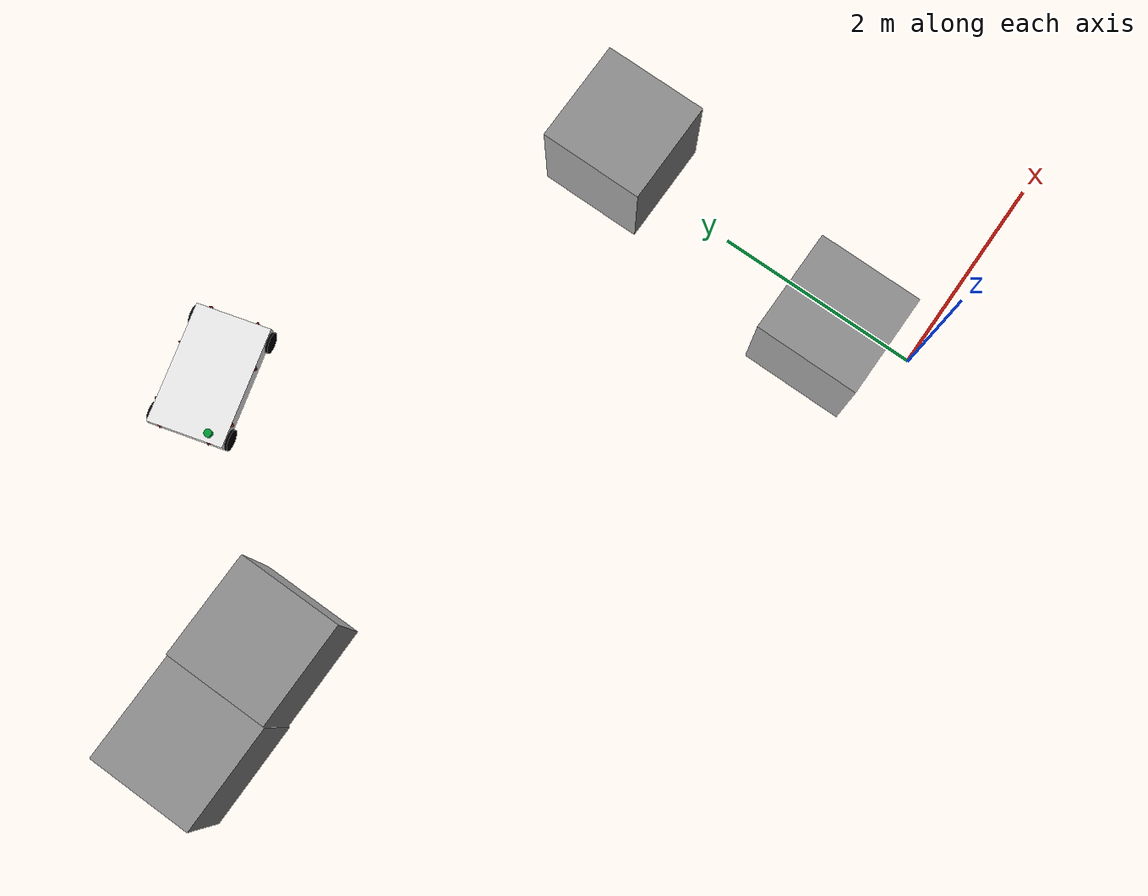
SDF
<sdf version="1.7">
 <world name="default">
  <gravity>0 0 -9.8</gravity>
  <magnetic_field>6e-06 2.3e-05 -4.2e-05</magnetic_field>
  <atmosphere type="adiabatic"/>
  <physics name="default_physics" default="0" type="ode">
   <max_step_size>0.001</max_step_size>
   <real_time_factor>1</real_time_factor>
   <real_time_update_rate>1000</real_time_update_rate>
  </physics>
  <scene>
   <ambient>0.4 0.4 0.4 1</ambient>
   <background>0.7 0.7 0.7 1</background>
   <shadows>1</shadows>
   <grid>0</grid>
   <origin_visual>0</origin_visual>
  </scene>
  <spherical_coordinates>
   <surface_model>EARTH_WGS84</surface_model>
   <latitude_deg>0</latitude_deg>
   <longitude_deg>0</longitude_deg>
   <elevation>0</elevation>
   <heading_deg>0</heading_deg>
  </spherical_coordinates>
  <light name="RetailShop_CeilingLight_001" type="point">
   <pose>2.77442 -3.62815 3.17847 0 -0 0</pose>
   <diffuse>0.5 0.5 0.5 1</diffuse>
   <specular>0.1 0.1 0.1 1</specular>
   <attenuation>
    <range>20</range>
    <constant>0.32</constant>
    <linear>0.01</linear>
    <quadratic>0.03</quadratic>
   </attenuation>
   <cast_shadows>0</cast_shadows>
   <direction>0 0 -1</direction>
   <spot><inner_angle>0</inner_angle><outer_angle>0</outer_angle><falloff>0</falloff></spot>
  </light>
  <light name="RetailShop_CeilingLight_002" type="point">
   <pose>5.38399 -5.38371 3.17847 0 -0 0</pose>
   <diffuse>0.5 0.5 0.5 1</diffuse>
   <specular>0.1 0.1 0.1 1</specular>
   <attenuation>
    <range>20</range>
    <constant>0.32</constant>
    <linear>0.01</linear>
    <quadratic>0.03</quadratic>
   </attenuation>
   <cast_shadows>0</cast_shadows>
   <direction>0 0 -1</direction>
   <spot><inner_angle>0</inner_angle><outer_angle>0</outer_angle><falloff>0</falloff></spot>
  </light>
  <light name="RetailShop_CeilingLight_003" type="point">
   <pose>5.38399 0.04192 3.17847 0 -0 0</pose>
   <diffuse>0.5 0.5 0.5 1</diffuse>
   <specular>0.1 0.1 0.1 1</specular>
   <attenuation>
    <range>20</range>
    <constant>0.32</constant>
    <linear>0.01</linear>
    <quadratic>0.03</quadratic>
   </attenuation>
   <cast_shadows>0</cast_shadows>
   <direction>0 0 -1</direction>
   <spot><inner_angle>0</inner_angle><outer_angle>0</outer_angle><falloff>0</falloff></spot>
  </light>
  <light name="RetailShop_CeilingLight_004" type="point">
   <pose>-3.21067 -5.38371 3.17847 0 -0 0</pose>
   <diffuse>0.5 0.5 0.5 1</diffuse>
   <specular>0.1 0.1 0.1 1</specular>
   <attenuation>
    <range>20</range>
    <constant>0.32</constant>
    <linear>0.01</linear>
    <quadratic>0.03</quadratic>
   </attenuation>
   <cast_shadows>0</cast_shadows>
   <direction>0 0 -1</direction>
   <spot><inner_angle>0</inner_angle><outer_angle>0</outer_angle><falloff>0</falloff></spot>
  </light>
  <light name="RetailShop_CeilingLight_005" type="point">
   <pose>-3.271 2.68593 3.17847 0 -0 0</pose>
   <diffuse>0.5 0.5 0.5 1</diffuse>
   <specular>0.1 0.1 0.1 1</specular>
   <attenuation>
    <range>20</range>
    <constant>0.32</constant>
    <linear>0.01</linear>
    <quadratic>0.03</quadratic>
   </attenuation>
   <cast_shadows>0</cast_shadows>
   <direction>0 0 -1</direction>
   <spot><inner_angle>0</inner_angle><outer_angle>0</outer_angle><falloff>0</falloff></spot>
  </light>
  <light name="RetailShop_CeilingLight_006" type="point">
   <pose>1.4932 4.69237 3.17847 0 -0 0</pose>
   <diffuse>0.5 0.5 0.5 1</diffuse>
   <specular>0.1 0.1 0.1 1</specular>
   <attenuation>
    <range>20</range>
    <constant>0.32</constant>
    <linear>0.01</linear>
    <quadratic>0.03</quadratic>
   </attenuation>
   <cast_shadows>0</cast_shadows>
   <direction>0 0 -1</direction>
   <spot><inner_angle>0</inner_angle><outer_angle>0</outer_angle><falloff>0</falloff></spot>
  </light>
  <audio><device>default</device></audio>
  <model name="p4_amr">
   <link name="base_footprint">
    <inertial>
     <pose>0.001856 0.000418 0.152698 0 -0 0</pose>
     <mass>51.18</mass>
     <inertia>
      <ixx>2.37854</ixx>
      <ixy>-0.0107504</ixy>
      <ixz>-0.00800015</ixz>
      <iyy>5.91984</iyy>
      <iyz>-0.00265261</iyz>
      <izz>8.15295</izz>
     </inertia>
    </inertial>
    <collision name="base_footprint_fixed_joint_lump__base_link_collision">
     <pose>0 0 0.1516 0 -0 0</pose>
     <geometry><box><size>1.162 0.73 0.129</size></box></geometry>
    </collision>
    <collision name="base_footprint_fixed_joint_lump__camera_1_link_collision_1">
     <pose>0.542239 0.204572 0.19208 0 0 -0.872665</pose>
     <geometry><box><size>0.03 0.124 0.03</size></box></geometry>
    </collision>
    <collision name="base_footprint_fixed_joint_lump__camera_2_link_collision_2">
     <pose>0.542239 -0.204572 0.19208 0 -0 0.872665</pose>
     <geometry><box><size>0.03 0.124 0.03</size></box></geometry>
    </collision>
    <collision name="base_footprint_fixed_joint_lump__camera_3_link_collision_3">
     <pose>0.328397 -0.326339 0.19208 0 0 -2.44346</pose>
     <geometry><box><size>0.03 0.124 0.03</size></box></geometry>
    </collision>
    <collision name="base_footprint_fixed_joint_lump__camera_4_link_collision_4">
     <pose>-0.163297 -0.326339 0.19208 0 0 -0.698132</pose>
     <geometry><box><size>0.03 0.124 0.03</size></box></geometry>
    </collision>
    <collision name="base_footprint_fixed_joint_lump__camera_5_link_collision_5">
     <pose>-0.542239 -0.204572 0.19208 0 -0 2.16893</pose>
     <geometry><box><size>0.03 0.124 0.03</size></box></geometry>
    </collision>
    <collision name="base_footprint_fixed_joint_lump__camera_6_link_collision_6">
     <pose>-0.542239 0.204572 0.19208 0 0 -2.16893</pose>
     <geometry><box><size>0.03 0.124 0.03</size></box></geometry>
    </collision>
    <collision name="base_footprint_fixed_joint_lump__camera_7_link_collision_7">
     <pose>-0.163297 0.326339 0.19208 0 -0 0.698132</pose>
     <geometry><box><size>0.03 0.124 0.03</size></box></geometry>
    </collision>
    <collision name="base_footprint_fixed_joint_lump__camera_8_link_collision_8">
     <pose>0.328397 0.326339 0.19208 0 -0 2.44346</pose>
     <geometry><box><size>0.03 0.124 0.03</size></box></geometry>
    </collision>
    <collision name="base_footprint_fixed_joint_lump__laser_collision_9">
     <pose>0.504 0.21409 0.2516 0 -0 0</pose>
     <geometry><cylinder><length>0.05</length><radius>0.0375</radius></cylinder></geometry>
    </collision>
    <visual name="base_footprint_fixed_joint_lump__base_link_visual">
     <pose>0 0 0.1516 0 -0 0</pose>
     <geometry><box><size>1.162 0.73 0.129</size></box></geometry>
     <material><ambient>1 1 1 1</ambient><diffuse>1 1 1 1</diffuse><specular>0.99 0.99 0.99 1</specular></material>
    </visual>
    <visual name="base_footprint_fixed_joint_lump__camera_1_link_visual_1">
     <pose>0.542239 0.204572 0.19208 0 0 -0.872665</pose>
     <geometry><box><size>0.03 0.124 0.03</size></box></geometry>
     <material>
      <ambient>0.416 0.051 0.047 1</ambient>
      <diffuse>0.416 0.051 0.047 1</diffuse>
      <specular>0.416 0.051 0.047 1</specular>
      <emissive>0.416 0.051 0.047 1</emissive>
     </material>
    </visual>
    <visual name="base_footprint_fixed_joint_lump__camera_2_link_visual_2">
     <pose>0.542239 -0.204572 0.19208 0 -0 0.872665</pose>
     <geometry><box><size>0.03 0.124 0.03</size></box></geometry>
     <material>
      <ambient>0.416 0.051 0.047 1</ambient>
      <diffuse>0.416 0.051 0.047 1</diffuse>
      <specular>0.416 0.051 0.047 1</specular>
      <emissive>0.416 0.051 0.047 1</emissive>
     </material>
    </visual>
    <visual name="base_footprint_fixed_joint_lump__camera_3_link_visual_3">
     <pose>0.328397 -0.326339 0.19208 0 0 -2.44346</pose>
     <geometry><box><size>0.03 0.124 0.03</size></box></geometry>
     <material>
      <ambient>0.416 0.051 0.047 1</ambient>
      <diffuse>0.416 0.051 0.047 1</diffuse>
      <specular>0.416 0.051 0.047 1</specular>
      <emissive>0.416 0.051 0.047 1</emissive>
     </material>
    </visual>
    <visual name="base_footprint_fixed_joint_lump__camera_4_link_visual_4">
     <pose>-0.163297 -0.326339 0.19208 0 0 -0.698132</pose>
     <geometry><box><size>0.03 0.124 0.03</size></box></geometry>
     <material>
      <ambient>0.416 0.051 0.047 1</ambient>
      <diffuse>0.416 0.051 0.047 1</diffuse>
      <specular>0.416 0.051 0.047 1</specular>
      <emissive>0.416 0.051 0.047 1</emissive>
     </material>
    </visual>
    <visual name="base_footprint_fixed_joint_lump__camera_5_link_visual_5">
     <pose>-0.542239 -0.204572 0.19208 0 -0 2.16893</pose>
     <geometry><box><size>0.03 0.124 0.03</size></box></geometry>
     <material>
      <ambient>0.416 0.051 0.047 1</ambient>
      <diffuse>0.416 0.051 0.047 1</diffuse>
      <specular>0.416 0.051 0.047 1</specular>
      <emissive>0.416 0.051 0.047 1</emissive>
     </material>
    </visual>
    <visual name="base_footprint_fixed_joint_lump__camera_6_link_visual_6">
     <pose>-0.542239 0.204572 0.19208 0 0 -2.16893</pose>
     <geometry><box><size>0.03 0.124 0.03</size></box></geometry>
     <material>
      <ambient>0.416 0.051 0.047 1</ambient>
      <diffuse>0.416 0.051 0.047 1</diffuse>
      <specular>0.416 0.051 0.047 1</specular>
      <emissive>0.416 0.051 0.047 1</emissive>
     </material>
    </visual>
    <visual name="base_footprint_fixed_joint_lump__camera_7_link_visual_7">
     <pose>-0.163297 0.326339 0.19208 0 -0 0.698132</pose>
     <geometry><box><size>0.03 0.124 0.03</size></box></geometry>
     <material>
      <ambient>0.416 0.051 0.047 1</ambient>
      <diffuse>0.416 0.051 0.047 1</diffuse>
      <specular>0.416 0.051 0.047 1</specular>
      <emissive>0.416 0.051 0.047 1</emissive>
     </material>
    </visual>
    <visual name="base_footprint_fixed_joint_lump__camera_8_link_visual_8">
     <pose>0.328397 0.326339 0.19208 0 -0 2.44346</pose>
     <geometry><box><size>0.03 0.124 0.03</size></box></geometry>
     <material>
      <ambient>0.416 0.051 0.047 1</ambient>
      <diffuse>0.416 0.051 0.047 1</diffuse>
      <specular>0.416 0.051 0.047 1</specular>
      <emissive>0.416 0.051 0.047 1</emissive>
     </material>
    </visual>
    <visual name="base_footprint_fixed_joint_lump__laser_visual_9">
     <pose>0.504 0.21409 0.2516 0 -0 0</pose>
     <geometry><cylinder><length>0.05</length><radius>0.0375</radius></cylinder></geometry>
     <material>
      <ambient>0.003 0.639 0.223 1</ambient>
      <diffuse>0.003 0.639 0.223 1</diffuse>
      <specular>0.003 0.639 0.223 1</specular>
      <emissive>0 0 0 0</emissive>
     </material>
    </visual>
    <sensor name="camera_1" type="depth">
     <always_on>1</always_on>
     <update_rate>30</update_rate>
     <camera name="camera_1">
      <horizontal_fov>1.50098</horizontal_fov>
      <image><width>640</width><height>480</height><format>R8G8B8</format></image>
      <clip><near>0.1</near><far>100</far></clip>
     </camera>
     <plugin name="camera_1_controller" filename="libgazebo_ros_camera.so">
      <ros>
       <remapping>/camera_1/camera_info:=/camera_1/color/camera_info</remapping>
       <remapping>/camera_1/image_raw:=/camera_1/color/image_raw</remapping>
       <remapping>/camera_1/points:=/camera_1/depth/color/points</remapping>
       <remapping>/camera_1/depth/image_raw:=/camera_1/depth/image_rect_raw</remapping>
      </ros>
      <min_depth>0.015</min_depth>
      <max_depth>3.0</max_depth>
      <hack_baseline>0.07</hack_baseline>
      <frame_name>camera_1_depth_link</frame_name>
      <distortion_k1>0.00000001</distortion_k1>
      <distortion_k2>0.00000001</distortion_k2>
      <distortion_k3>0.00000001</distortion_k3>
      <distortion_t1>0.00000001</distortion_t1>
      <distortion_t2>0.00000001</distortion_t2>
     </plugin>
     <pose>0.542239 0.204572 0.19208 0 0 -0.872665</pose>
    </sensor>
    <sensor name="camera_2" type="depth">
     <always_on>1</always_on>
     <update_rate>30</update_rate>
     <camera name="camera_2">
      <horizontal_fov>1.50098</horizontal_fov>
      <image><width>640</width><height>480</height><format>R8G8B8</format></image>
      <clip><near>0.1</near><far>100</far></clip>
     </camera>
     <plugin name="camera_2_controller" filename="libgazebo_ros_camera.so">
      <ros>
       <remapping>/camera_2/camera_info:=/camera_2/color/camera_info</remapping>
       <remapping>/camera_2/image_raw:=/camera_2/color/image_raw</remapping>
       <remapping>/camera_2/points:=/camera_2/depth/color/points</remapping>
       <remapping>/camera_2/depth/image_raw:=/camera_2/depth/image_rect_raw</remapping>
      </ros>
      <min_depth>0.015</min_depth>
      <max_depth>3.0</max_depth>
      <hack_baseline>0.07</hack_baseline>
      <frame_name>camera_2_depth_link</frame_name>
      <distortion_k1>0.00000001</distortion_k1>
      <distortion_k2>0.00000001</distortion_k2>
      <distortion_k3>0.00000001</distortion_k3>
      <distortion_t1>0.00000001</distortion_t1>
      <distortion_t2>0.00000001</distortion_t2>
     </plugin>
     <pose>0.542239 -0.204572 0.19208 0 -0 0.872665</pose>
    </sensor>
    <sensor name="camera_3" type="depth">
     <always_on>1</always_on>
     <update_rate>30</update_rate>
     <camera name="camera_3">
      <horizontal_fov>1.50098</horizontal_fov>
      <image><width>640</width><height>480</height><format>R8G8B8</format></image>
      <clip><near>0.1</near><far>100</far></clip>
     </camera>
     <plugin name="camera_3_controller" filename="libgazebo_ros_camera.so">
      <ros>
       <remapping>/camera_3/camera_info:=/camera_3/color/camera_info</remapping>
       <remapping>/camera_3/image_raw:=/camera_3/color/image_raw</remapping>
       <remapping>/camera_3/points:=/camera_3/depth/color/points</remapping>
       <remapping>/camera_3/depth/image_raw:=/camera_3/depth/image_rect_raw</remapping>
      </ros>
      <min_depth>0.015</min_depth>
      <max_depth>3.0</max_depth>
      <hack_baseline>0.07</hack_baseline>
      <frame_name>camera_3_depth_link</frame_name>
      <distortion_k1>0.00000001</distortion_k1>
      <distortion_k2>0.00000001</distortion_k2>
      <distortion_k3>0.00000001</distortion_k3>
      <distortion_t1>0.00000001</distortion_t1>
      <distortion_t2>0.00000001</distortion_t2>
     </plugin>
     <pose>0.328397 -0.326339 0.19208 0 0 -2.44346</pose>
    </sensor>
    <sensor name="camera_4" type="depth">
     <always_on>1</always_on>
     <update_rate>30</update_rate>
     <camera name="camera_4">
      <horizontal_fov>1.50098</horizontal_fov>
      <image><width>640</width><height>480</height><format>R8G8B8</format></image>
      <clip><near>0.1</near><far>100</far></clip>
     </camera>
     <plugin name="camera_4_controller" filename="libgazebo_ros_camera.so">
      <ros>
       <remapping>/camera_4/camera_info:=/camera_4/color/camera_info</remapping>
       <remapping>/camera_4/image_raw:=/camera_4/color/image_raw</remapping>
       <remapping>/camera_4/points:=/camera_4/depth/color/points</remapping>
       <remapping>/camera_4/depth/image_raw:=/camera_4/depth/image_rect_raw</remapping>
      </ros>
      <min_depth>0.015</min_depth>
      <max_depth>3.0</max_depth>
      <hack_baseline>0.07</hack_baseline>
      <frame_name>camera_4_depth_link</frame_name>
      <distortion_k1>0.00000001</distortion_k1>
      <distortion_k2>0.00000001</distortion_k2>
      <distortion_k3>0.00000001</distortion_k3>
      <distortion_t1>0.00000001</distortion_t1>
      <distortion_t2>0.00000001</distortion_t2>
     </plugin>
     <pose>-0.163297 -0.326339 0.19208 0 0 -0.698132</pose>
    </sensor>
    <sensor name="camera_5" type="depth">
     <always_on>1</always_on>
     <update_rate>30</update_rate>
     <camera name="camera_5">
      <horizontal_fov>1.50098</horizontal_fov>
      <image><width>640</width><height>480</height><format>R8G8B8</format></image>
      <clip><near>0.1</near><far>100</far></clip>
     </camera>
     <plugin name="camera_5_controller" filename="libgazebo_ros_camera.so">
      <ros>
       <remapping>/camera_5/camera_info:=/camera_5/color/camera_info</remapping>
       <remapping>/camera_5/image_raw:=/camera_5/color/image_raw</remapping>
       <remapping>/camera_5/points:=/camera_5/depth/color/points</remapping>
       <remapping>/camera_5/depth/image_raw:=/camera_5/depth/image_rect_raw</remapping>
      </ros>
      <min_depth>0.015</min_depth>
      <max_depth>3.0</max_depth>
      <hack_baseline>0.07</hack_baseline>
      <frame_name>camera_5_depth_link</frame_name>
      <distortion_k1>0.00000001</distortion_k1>
      <distortion_k2>0.00000001</distortion_k2>
      <distortion_k3>0.00000001</distortion_k3>
      <distortion_t1>0.00000001</distortion_t1>
      <distortion_t2>0.00000001</distortion_t2>
     </plugin>
     <pose>-0.542239 -0.204572 0.19208 0 -0 2.16893</pose>
    </sensor>
    <sensor name="camera_6" type="depth">
     <always_on>1</always_on>
     <update_rate>30</update_rate>
     <camera name="camera_6">
      <horizontal_fov>1.50098</horizontal_fov>
      <image><width>640</width><height>480</height><format>R8G8B8</format></image>
      <clip><near>0.1</near><far>100</far></clip>
     </camera>
     <plugin name="camera_6_controller" filename="libgazebo_ros_camera.so">
      <ros>
       <remapping>/camera_6/camera_info:=/camera_6/color/camera_info</remapping>
       <remapping>/camera_6/image_raw:=/camera_6/color/image_raw</remapping>
       <remapping>/camera_6/points:=/camera_6/depth/color/points</remapping>
       <remapping>/camera_6/depth/image_raw:=/camera_6/depth/image_rect_raw</remapping>
      </ros>
      <min_depth>0.015</min_depth>
      <max_depth>3.0</max_depth>
      <hack_baseline>0.07</hack_baseline>
      <frame_name>camera_6_depth_link</frame_name>
      <distortion_k1>0.00000001</distortion_k1>
      <distortion_k2>0.00000001</distortion_k2>
      <distortion_k3>0.00000001</distortion_k3>
      <distortion_t1>0.00000001</distortion_t1>
      <distortion_t2>0.00000001</distortion_t2>
     </plugin>
     <pose>-0.542239 0.204572 0.19208 0 0 -2.16893</pose>
    </sensor>
    <sensor name="camera_7" type="depth">
     <always_on>1</always_on>
     <update_rate>30</update_rate>
     <camera name="camera_7">
      <horizontal_fov>1.50098</horizontal_fov>
      <image><width>640</width><height>480</height><format>R8G8B8</format></image>
      <clip><near>0.1</near><far>100</far></clip>
     </camera>
     <plugin name="camera_7_controller" filename="libgazebo_ros_camera.so">
      <ros>
       <remapping>/camera_7/camera_info:=/camera_7/color/camera_info</remapping>
       <remapping>/camera_7/image_raw:=/camera_7/color/image_raw</remapping>
       <remapping>/camera_7/points:=/camera_7/depth/color/points</remapping>
       <remapping>/camera_7/depth/image_raw:=/camera_7/depth/image_rect_raw</remapping>
      </ros>
      <min_depth>0.015</min_depth>
      <max_depth>3.0</max_depth>
      <hack_baseline>0.07</hack_baseline>
      <frame_name>camera_7_depth_link</frame_name>
      <distortion_k1>0.00000001</distortion_k1>
      <distortion_k2>0.00000001</distortion_k2>
      <distortion_k3>0.00000001</distortion_k3>
      <distortion_t1>0.00000001</distortion_t1>
      <distortion_t2>0.00000001</distortion_t2>
     </plugin>
     <pose>-0.163297 0.326339 0.19208 0 -0 0.698132</pose>
    </sensor>
    <sensor name="camera_8" type="depth">
     <always_on>1</always_on>
     <update_rate>30</update_rate>
     <camera name="camera_8">
      <horizontal_fov>1.50098</horizontal_fov>
      <image><width>640</width><height>480</height><format>R8G8B8</format></image>
      <clip><near>0.1</near><far>100</far></clip>
     </camera>
     <plugin name="camera_8_controller" filename="libgazebo_ros_camera.so">
      <ros>
       <remapping>/camera_8/camera_info:=/camera_8/color/camera_info</remapping>
       <remapping>/camera_8/image_raw:=/camera_8/color/image_raw</remapping>
       <remapping>/camera_8/points:=/camera_8/depth/color/points</remapping>
       <remapping>/camera_8/depth/image_raw:=/camera_8/depth/image_rect_raw</remapping>
      </ros>
      <min_depth>0.015</min_depth>
      <max_depth>3.0</max_depth>
      <hack_baseline>0.07</hack_baseline>
      <frame_name>camera_8_depth_link</frame_name>
      <distortion_k1>0.00000001</distortion_k1>
      <distortion_k2>0.00000001</distortion_k2>
      <distortion_k3>0.00000001</distortion_k3>
      <distortion_t1>0.00000001</distortion_t1>
      <distortion_t2>0.00000001</distortion_t2>
     </plugin>
     <pose>0.328397 0.326339 0.19208 0 -0 2.44346</pose>
    </sensor>
    <sensor name="imu_sensor" type="imu">
     <always_on>1</always_on>
     <update_rate>20</update_rate>
     <visualize>1</visualize>
     <topic>__default_topic__</topic>
     <plugin name="imu_plugin" filename="libgazebo_ros_imu_sensor.so">
      <ros><remapping>~/out:=imu/data</remapping></ros>
      <topicName>imu/data</topicName>
      <bodyName>imu_link</bodyName>
      <update_rate>100</update_rate>
      <frameName>imu_link</frameName>
      <initial_orientation_as_reference>0</initial_orientation_as_reference>
     </plugin>
     <pose>0 0 0.1516 0 -0 0</pose>
    </sensor>
    <sensor name="rplidar" type="ray">
     <always_on>1</always_on>
     <update_rate>10</update_rate>
     <visualize>1</visualize>
     <ray>
      <scan>
       <horizontal>
        <samples>360</samples>
        <resolution>1</resolution>
        <min_angle>0</min_angle>
        <max_angle>6.28</max_angle>
       </horizontal>
       <vertical><samples>1</samples><min_angle>0</min_angle><max_angle>0</max_angle></vertical>
      </scan>
      <range><min>0.1</min><max>30</max><resolution>0.1</resolution></range>
     </ray>
     <plugin name="laser" filename="libgazebo_ros_ray_sensor.so">
      <ros><remapping>~/out:=scan</remapping></ros>
      <output_type>sensor_msgs/LaserScan</output_type>
      <always_on>1</always_on>
      <update_rate>10</update_rate>
      <frame_name>laser</frame_name>
     </plugin>
     <pose>0.504 0.21409 0.2766 0 -0 0</pose>
    </sensor>
   </link>
   <joint name="front_left_wheel_joint" type="revolute">
    <pose relative_to="base_footprint">0.4794 0.365 0.1016 0 -0 0</pose>
    <parent>base_footprint</parent>
    <child>front_left_wheel_link</child>
    <axis>
     <xyz>0 1 0</xyz>
     <limit><lower>-1e+16</lower><upper>1e+16</upper></limit>
     <dynamics><spring_reference>0</spring_reference><spring_stiffness>0</spring_stiffness></dynamics>
    </axis>
   </joint>
   <link name="front_left_wheel_link">
    <pose relative_to="front_left_wheel_joint">0 0 0 0 -0 0</pose>
    <inertial>
     <mass>0.6</mass>
     <inertia>
      <ixx>0.00247741</ixx>
      <ixy>0</ixy>
      <ixz>0</ixz>
      <iyy>0.00247741</iyy>
      <iyz>0</iyz>
      <izz>0.00247741</izz>
     </inertia>
    </inertial>
    <collision name="front_left_wheel_link_collision">
     <pose>0 0 0 1.5708 -0 0</pose>
     <geometry><cylinder><length>0.05</length><radius>0.1016</radius></cylinder></geometry>
     <surface><friction><ode><mu>0.01</mu><mu2>0.01</mu2></ode></friction></surface>
    </collision>
    <visual name="front_left_wheel_link_visual">
     <pose>0 0 0 1.5708 -0 0</pose>
     <geometry><cylinder><length>0.05</length><radius>0.1016</radius></cylinder></geometry>
     <material>
      <ambient>0 0 0 1</ambient>
      <diffuse>0 0 0 1</diffuse>
      <specular>0 0 0 1</specular>
      <emissive>0 0 0 0</emissive>
     </material>
    </visual>
   </link>
   <joint name="front_right_wheel_joint" type="revolute">
    <pose relative_to="base_footprint">0.4794 -0.365 0.1016 0 -0 0</pose>
    <parent>base_footprint</parent>
    <child>front_right_wheel_link</child>
    <axis>
     <xyz>0 1 0</xyz>
     <limit><lower>-1e+16</lower><upper>1e+16</upper></limit>
     <dynamics><spring_reference>0</spring_reference><spring_stiffness>0</spring_stiffness></dynamics>
    </axis>
   </joint>
   <link name="front_right_wheel_link">
    <pose relative_to="front_right_wheel_joint">0 0 0 0 -0 0</pose>
    <inertial>
     <mass>0.6</mass>
     <inertia>
      <ixx>0.00247741</ixx>
      <ixy>0</ixy>
      <ixz>0</ixz>
      <iyy>0.00247741</iyy>
      <iyz>0</iyz>
      <izz>0.00247741</izz>
     </inertia>
    </inertial>
    <collision name="front_right_wheel_link_collision">
     <pose>0 0 0 1.5708 -0 0</pose>
     <geometry><cylinder><length>0.05</length><radius>0.1016</radius></cylinder></geometry>
     <surface><friction><ode><mu>0.01</mu><mu2>0.01</mu2></ode></friction></surface>
    </collision>
    <visual name="front_right_wheel_link_visual">
     <pose>0 0 0 1.5708 -0 0</pose>
     <geometry><cylinder><length>0.05</length><radius>0.1016</radius></cylinder></geometry>
     <material>
      <ambient>0 0 0 1</ambient>
      <diffuse>0 0 0 1</diffuse>
      <specular>0 0 0 1</specular>
      <emissive>0 0 0 0</emissive>
     </material>
    </visual>
   </link>
   <joint name="rear_left_wheel_joint" type="revolute">
    <pose relative_to="base_footprint">-0.4794 0.365 0.1016 0 -0 0</pose>
    <parent>base_footprint</parent>
    <child>rear_left_wheel_link</child>
    <axis>
     <xyz>0 1 0</xyz>
     <limit><lower>-1e+16</lower><upper>1e+16</upper></limit>
     <dynamics><spring_reference>0</spring_reference><spring_stiffness>0</spring_stiffness></dynamics>
    </axis>
   </joint>
   <link name="rear_left_wheel_link">
    <pose relative_to="rear_left_wheel_joint">0 0 0 0 -0 0</pose>
    <inertial>
     <mass>0.6</mass>
     <inertia>
      <ixx>0.00247741</ixx>
      <ixy>0</ixy>
      <ixz>0</ixz>
      <iyy>0.00247741</iyy>
      <iyz>0</iyz>
      <izz>0.00247741</izz>
     </inertia>
    </inertial>
    <collision name="rear_left_wheel_link_collision">
     <pose>0 0 0 1.5708 -0 0</pose>
     <geometry><cylinder><length>0.05</length><radius>0.1016</radius></cylinder></geometry>
     <surface><friction><ode><mu>0.01</mu><mu2>0.01</mu2></ode></friction></surface>
    </collision>
    <visual name="rear_left_wheel_link_visual">
     <pose>0 0 0 1.5708 -0 0</pose>
     <geometry><cylinder><length>0.05</length><radius>0.1016</radius></cylinder></geometry>
     <material>
      <ambient>0 0 0 1</ambient>
      <diffuse>0 0 0 1</diffuse>
      <specular>0 0 0 1</specular>
      <emissive>0 0 0 0</emissive>
     </material>
    </visual>
   </link>
   <joint name="rear_right_wheel_joint" type="revolute">
    <pose relative_to="base_footprint">-0.4794 -0.365 0.1016 0 -0 0</pose>
    <parent>base_footprint</parent>
    <child>rear_right_wheel_link</child>
    <axis>
     <xyz>0 1 0</xyz>
     <limit><lower>-1e+16</lower><upper>1e+16</upper></limit>
     <dynamics><spring_reference>0</spring_reference><spring_stiffness>0</spring_stiffness></dynamics>
    </axis>
   </joint>
   <link name="rear_right_wheel_link">
    <pose relative_to="rear_right_wheel_joint">0 0 0 0 -0 0</pose>
    <inertial>
     <mass>0.6</mass>
     <inertia>
      <ixx>0.00247741</ixx>
      <ixy>0</ixy>
      <ixz>0</ixz>
      <iyy>0.00247741</iyy>
      <iyz>0</iyz>
      <izz>0.00247741</izz>
     </inertia>
    </inertial>
    <collision name="rear_right_wheel_link_collision">
     <pose>0 0 0 1.5708 -0 0</pose>
     <geometry><cylinder><length>0.05</length><radius>0.1016</radius></cylinder></geometry>
     <surface><friction><ode><mu>0.01</mu><mu2>0.01</mu2></ode></friction></surface>
    </collision>
    <visual name="rear_right_wheel_link_visual">
     <pose>0 0 0 1.5708 -0 0</pose>
     <geometry><cylinder><length>0.05</length><radius>0.1016</radius></cylinder></geometry>
     <material>
      <ambient>0 0 0 1</ambient>
      <diffuse>0 0 0 1</diffuse>
      <specular>0 0 0 1</specular>
      <emissive>0 0 0 0</emissive>
     </material>
    </visual>
   </link>
   <static>0</static>
   <plugin name="object_controller" filename="libgazebo_ros_planar_move.so">
    <ros><remapping>cmd_vel:=cmd_vel</remapping><remapping>odom:=odom</remapping></ros>
    <update_rate>100</update_rate>
    <publish_rate>100</publish_rate>
    <publish_odom>1</publish_odom>
    <publish_odom_tf>1</publish_odom_tf>
    <odometry_frame>odom</odometry_frame>
    <robot_base_frame>base_link</robot_base_frame>
    <covariance_x>0.0001</covariance_x>
    <covariance_y>0.0001</covariance_y>
    <covariance_yaw>0.0001</covariance_yaw>
   </plugin>
   <pose>-3.80749 5.07403 0.013371 -3e-05 1e-06 -2.87107</pose>
  </model>
  <model name="unit_box_0">
   <pose>-5.37552 3.12982 0.513382 0 -0 1.4e-05</pose>
   <link name="link">
    <inertial>
     <mass>1</mass>
     <inertia>
      <ixx>0.166667</ixx>
      <ixy>0</ixy>
      <ixz>0</ixz>
      <iyy>0.166667</iyy>
      <iyz>0</iyz>
      <izz>0.166667</izz>
     </inertia>
    </inertial>
    <collision name="collision"><geometry><box><size>1 1 1</size></box></geometry></collision>
    <visual name="visual">
     <geometry><box><size>1 1 1</size></box></geometry>
     <material>
      <script><name>Gazebo/Grey</name><uri>file://media/materials/scripts/gazebo.material</uri></script>
     </material>
    </visual>
   </link>
  </model>
  <model name="unit_box_1">
   <pose>-6.37571 3.11597 0.513373 -0 2e-06 -2e-06</pose>
   <link name="link">
    <inertial>
     <mass>1</mass>
     <inertia>
      <ixx>0.166667</ixx>
      <ixy>0</ixy>
      <ixz>0</ixz>
      <iyy>0.166667</iyy>
      <iyz>0</iyz>
      <izz>0.166667</izz>
     </inertia>
    </inertial>
    <collision name="collision"><geometry><box><size>1 1 1</size></box></geometry></collision>
    <visual name="visual">
     <geometry><box><size>1 1 1</size></box></geometry>
     <material>
      <script><name>Gazebo/Grey</name><uri>file://media/materials/scripts/gazebo.material</uri></script>
     </material>
    </visual>
   </link>
  </model>
  <model name="unit_box_2">
   <pose>-0.314789 0.749256 0.513382 -0 -0 -0</pose>
   <link name="link">
    <inertial>
     <mass>1</mass>
     <inertia>
      <ixx>0.166667</ixx>
      <ixy>0</ixy>
      <ixz>0</ixz>
      <iyy>0.166667</iyy>
      <iyz>0</iyz>
      <izz>0.166667</izz>
     </inertia>
    </inertial>
    <collision name="collision"><geometry><box><size>1 1 1</size></box></geometry></collision>
    <visual name="visual">
     <geometry><box><size>1 1 1</size></box></geometry>
     <material>
      <script><name>Gazebo/Grey</name><uri>file://media/materials/scripts/gazebo.material</uri></script>
     </material>
    </visual>
   </link>
  </model>
  <model name="unit_box">
   <pose>0.046708 3.24315 0.513382 -0 -0 -0.000841</pose>
   <link name="link">
    <inertial>
     <mass>1</mass>
     <inertia>
      <ixx>0.166667</ixx>
      <ixy>0</ixy>
      <ixz>0</ixz>
      <iyy>0.166667</iyy>
      <iyz>0</iyz>
      <izz>0.166667</izz>
     </inertia>
    </inertial>
    <collision name="collision"><geometry><box><size>1 1 1</size></box></geometry></collision>
    <visual name="visual">
     <geometry><box><size>1 1 1</size></box></geometry>
     <material>
      <script><name>Gazebo/Grey</name><uri>file://media/materials/scripts/gazebo.material</uri></script>
     </material>
    </visual>
   </link>
  </model>
 </world>
</sdf>
